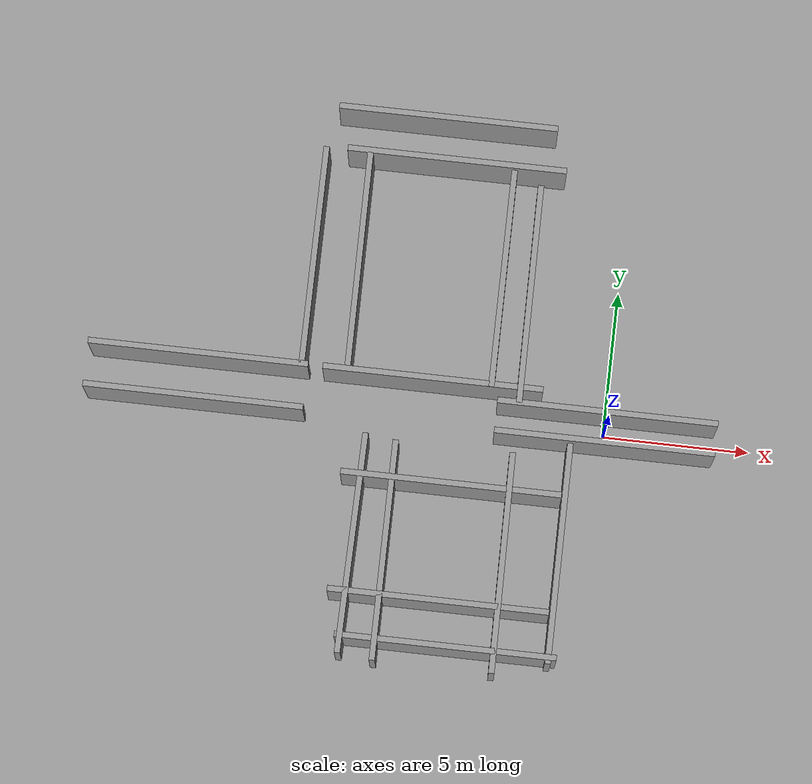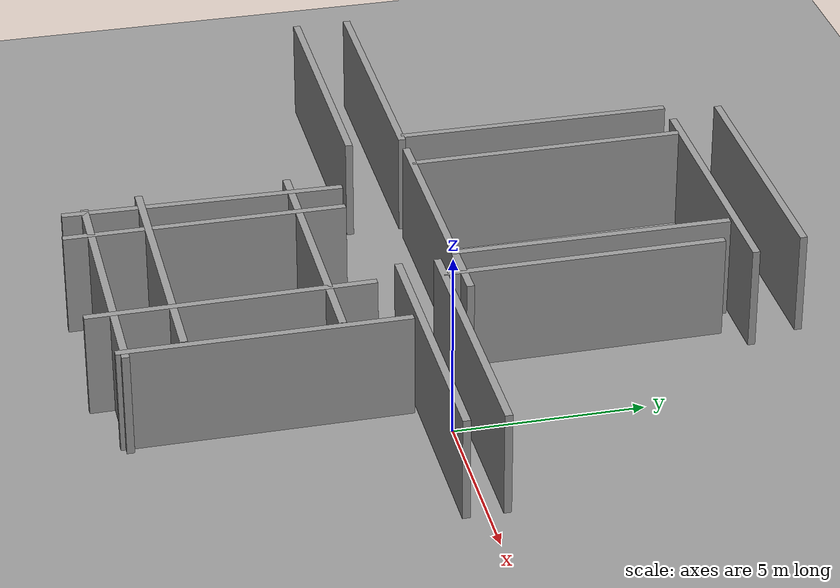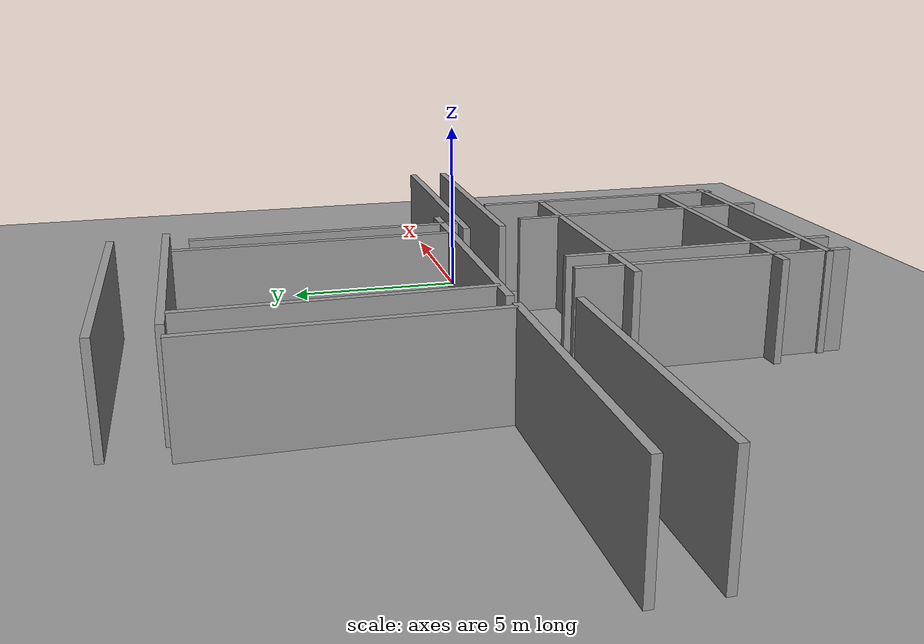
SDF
<sdf version="1.4">
 <world name="default">
  <light name="sun" type="directional">
   <pose>0 0 10 0 -0 0</pose>
   <diffuse>0.8 0.8 0.8 1</diffuse>
   <specular>0.2 0.2 0.2 1</specular>
   <attenuation>
    <range>1000</range>
    <constant>0.9</constant>
    <linear>0.01</linear>
    <quadratic>0.001</quadratic>
   </attenuation>
   <direction>0.5 0.1 -0.9</direction>
  </light>
  <scene><ambient>0.4 0.4 0.4 1</ambient><background>0.7 0.7 0.7 1</background><shadows>1</shadows></scene>
  <physics type="ode">
   <max_step_size>0.01</max_step_size>
   <real_time_factor>1</real_time_factor>
   <real_time_update_rate>100</real_time_update_rate>
   <gravity>0 0 -9.8</gravity>
  </physics>
  <model name="ground_plane_0">
   <static>1</static>
   <link name="link">
    <collision name="collision">
     <geometry><plane><normal>0 0 1</normal><size>100 100</size></plane></geometry>
     <surface><friction><ode><mu>100</mu><mu2>50</mu2></ode></friction></surface>
    </collision>
    <visual name="visual">
     <cast_shadows>0</cast_shadows>
     <geometry><plane><normal>0 0 1</normal><size>100 100</size></plane></geometry>
     <material>
      <script><uri>file://media/materials/scripts/gazebo.material</uri><name>Gazebo/Grey</name></script>
     </material>
    </visual>
    <velocity_decay><linear>0</linear><angular>0</angular></velocity_decay>
   </link>
   <pose>0.497681 0 0 0 -0 0</pose>
  </model>
  <spherical_coordinates>
   <surface_model>EARTH_WGS84</surface_model>
   <latitude_deg>0</latitude_deg>
   <longitude_deg>0</longitude_deg>
   <elevation>0</elevation>
   <heading_deg>0</heading_deg>
  </spherical_coordinates>
  <model name="grey_wall">
   <static>1</static>
   <link name="link">
    <pose>0 0 1.4 0 -0 0</pose>
    <collision name="collision"><geometry><box><size>7.5 0.2 2.8</size></box></geometry></collision>
    <visual name="visual">
     <cast_shadows>0</cast_shadows>
     <geometry><box><size>7.5 0.2 2.8</size></box></geometry>
     <material>
      <script>
       <uri>model://grey_wall/materials/scripts</uri>
       <uri>model://grey_wall/materials/textures</uri>
       <name>vrc/grey_wall</name>
      </script>
     </material>
    </visual>
    <velocity_decay><linear>0</linear><angular>0</angular></velocity_decay>
   </link>
   <pose>0 -0.546287 0 0 -0 0</pose>
  </model>
  <model name="grey_wall_0">
   <static>1</static>
   <link name="link">
    <pose>0 0 1.4 0 -0 0</pose>
    <collision name="collision"><geometry><box><size>7.5 0.2 2.8</size></box></geometry></collision>
    <visual name="visual">
     <cast_shadows>0</cast_shadows>
     <geometry><box><size>7.5 0.2 2.8</size></box></geometry>
     <material>
      <script>
       <uri>model://grey_wall/materials/scripts</uri>
       <uri>model://grey_wall/materials/textures</uri>
       <name>vrc/grey_wall</name>
      </script>
     </material>
    </visual>
    <velocity_decay><linear>0</linear><angular>0</angular></velocity_decay>
   </link>
   <pose>0 0.482263 0 0 -0 0</pose>
  </model>
  <model name="grey_wall_1">
   <static>1</static>
   <link name="link">
    <pose>0 0 1.4 0 -0 0</pose>
    <collision name="collision"><geometry><box><size>7.5 0.2 2.8</size></box></geometry></collision>
    <visual name="visual">
     <cast_shadows>0</cast_shadows>
     <geometry><box><size>7.5 0.2 2.8</size></box></geometry>
     <material>
      <script>
       <uri>model://grey_wall/materials/scripts</uri>
       <uri>model://grey_wall/materials/textures</uri>
       <name>vrc/grey_wall</name>
      </script>
     </material>
    </visual>
    <velocity_decay><linear>0</linear><angular>0</angular></velocity_decay>
   </link>
   <pose>-3.03913 4.22558 0 0 0 -1.56373</pose>
  </model>
  <model name="grey_wall_2">
   <static>1</static>
   <link name="link">
    <pose>0 0 1.4 0 -0 0</pose>
    <collision name="collision"><geometry><box><size>7.5 0.2 2.8</size></box></geometry></collision>
    <visual name="visual">
     <cast_shadows>0</cast_shadows>
     <geometry><box><size>7.5 0.2 2.8</size></box></geometry>
     <material>
      <script>
       <uri>model://grey_wall/materials/scripts</uri>
       <uri>model://grey_wall/materials/textures</uri>
       <name>vrc/grey_wall</name>
      </script>
     </material>
    </visual>
    <velocity_decay><linear>0</linear><angular>0</angular></velocity_decay>
   </link>
   <pose>-6.44743 10 0 0 -0 0</pose>
  </model>
  <model name="grey_wall_3">
   <static>1</static>
   <link name="link">
    <pose>0 0 1.4 0 -0 0</pose>
    <collision name="collision"><geometry><box><size>7.5 0.2 2.8</size></box></geometry></collision>
    <visual name="visual">
     <cast_shadows>0</cast_shadows>
     <geometry><box><size>7.5 0.2 2.8</size></box></geometry>
     <material>
      <script>
       <uri>model://grey_wall/materials/scripts</uri>
       <uri>model://grey_wall/materials/textures</uri>
       <name>vrc/grey_wall</name>
      </script>
     </material>
    </visual>
    <velocity_decay><linear>0</linear><angular>0</angular></velocity_decay>
   </link>
   <pose>-10.4729 4.77716 0 0 -0 1.57103</pose>
  </model>
  <model name="grey_wall_4">
   <static>1</static>
   <link name="link">
    <pose>0 0 1.4 0 -0 0</pose>
    <collision name="collision"><geometry><box><size>7.5 0.2 2.8</size></box></geometry></collision>
    <visual name="visual">
     <cast_shadows>0</cast_shadows>
     <geometry><box><size>7.5 0.2 2.8</size></box></geometry>
     <material>
      <script>
       <uri>model://grey_wall/materials/scripts</uri>
       <uri>model://grey_wall/materials/textures</uri>
       <name>vrc/grey_wall</name>
      </script>
     </material>
    </visual>
    <velocity_decay><linear>0</linear><angular>0</angular></velocity_decay>
   </link>
   <pose>-8.93866 4.74202 0 0 -0 1.57759</pose>
  </model>
  <model name="grey_wall_5">
   <static>1</static>
   <link name="link">
    <pose>0 0 1.4 0 -0 0</pose>
    <collision name="collision"><geometry><box><size>7.5 0.2 2.8</size></box></geometry></collision>
    <visual name="visual">
     <cast_shadows>0</cast_shadows>
     <geometry><box><size>7.5 0.2 2.8</size></box></geometry>
     <material>
      <script>
       <uri>model://grey_wall/materials/scripts</uri>
       <uri>model://grey_wall/materials/textures</uri>
       <name>vrc/grey_wall</name>
      </script>
     </material>
    </visual>
    <velocity_decay><linear>0</linear><angular>0</angular></velocity_decay>
   </link>
   <pose>-6 1 0 0 -0 0</pose>
  </model>
  <model name="grey_wall_6">
   <static>1</static>
   <link name="link">
    <pose>0 0 1.4 0 -0 0</pose>
    <collision name="collision"><geometry><box><size>7.5 0.2 2.8</size></box></geometry></collision>
    <visual name="visual">
     <cast_shadows>0</cast_shadows>
     <geometry><box><size>7.5 0.2 2.8</size></box></geometry>
     <material>
      <script>
       <uri>model://grey_wall/materials/scripts</uri>
       <uri>model://grey_wall/materials/textures</uri>
       <name>vrc/grey_wall</name>
      </script>
     </material>
    </visual>
    <velocity_decay><linear>0</linear><angular>0</angular></velocity_decay>
   </link>
   <pose>-4.01054 4.65995 0 0 -0 1.57199</pose>
  </model>
  <model name="grey_wall_7">
   <static>1</static>
   <link name="link">
    <pose>0 0 1.4 0 -0 0</pose>
    <collision name="collision"><geometry><box><size>7.5 0.2 2.8</size></box></geometry></collision>
    <visual name="visual">
     <cast_shadows>0</cast_shadows>
     <geometry><box><size>7.5 0.2 2.8</size></box></geometry>
     <material>
      <script>
       <uri>model://grey_wall/materials/scripts</uri>
       <uri>model://grey_wall/materials/textures</uri>
       <name>vrc/grey_wall</name>
      </script>
     </material>
    </visual>
    <velocity_decay><linear>0</linear><angular>0</angular></velocity_decay>
   </link>
   <pose>-6 8.57193 0 0 -0 0</pose>
  </model>
  <model name="grey_wall_8">
   <static>1</static>
   <link name="link">
    <pose>0 0 1.4 0 -0 0</pose>
    <collision name="collision"><geometry><box><size>7.5 0.2 2.8</size></box></geometry></collision>
    <visual name="visual">
     <cast_shadows>0</cast_shadows>
     <geometry><box><size>7.5 0.2 2.8</size></box></geometry>
     <material>
      <script>
       <uri>model://grey_wall/materials/scripts</uri>
       <uri>model://grey_wall/materials/textures</uri>
       <name>vrc/grey_wall</name>
      </script>
     </material>
    </visual>
    <velocity_decay><linear>0</linear><angular>0</angular></velocity_decay>
   </link>
   <pose>-14 1 0 0 -0 0</pose>
  </model>
  <model name="grey_wall_9">
   <static>1</static>
   <link name="link">
    <pose>0 0 1.4 0 -0 0</pose>
    <collision name="collision"><geometry><box><size>7.5 0.2 2.8</size></box></geometry></collision>
    <visual name="visual">
     <cast_shadows>0</cast_shadows>
     <geometry><box><size>7.5 0.2 2.8</size></box></geometry>
     <material>
      <script>
       <uri>model://grey_wall/materials/scripts</uri>
       <uri>model://grey_wall/materials/textures</uri>
       <name>vrc/grey_wall</name>
      </script>
     </material>
    </visual>
    <velocity_decay><linear>0</linear><angular>0</angular></velocity_decay>
   </link>
   <pose>-14 -0.48135 0 0 -0 0</pose>
  </model>
  <model name="grey_wall_10">
   <static>1</static>
   <link name="link">
    <pose>0 0 1.4 0 -0 0</pose>
    <collision name="collision"><geometry><box><size>7.5 0.2 2.8</size></box></geometry></collision>
    <visual name="visual">
     <cast_shadows>0</cast_shadows>
     <geometry><box><size>7.5 0.2 2.8</size></box></geometry>
     <material>
      <script>
       <uri>model://grey_wall/materials/scripts</uri>
       <uri>model://grey_wall/materials/textures</uri>
       <name>vrc/grey_wall</name>
      </script>
     </material>
    </visual>
    <velocity_decay><linear>0</linear><angular>0</angular></velocity_decay>
   </link>
   <pose>-8.11411 -4.87354 0 0 -0 1.55473</pose>
  </model>
  <model name="grey_wall_11">
   <static>1</static>
   <link name="link">
    <pose>0 0 1.4 0 -0 0</pose>
    <collision name="collision"><geometry><box><size>7.5 0.2 2.8</size></box></geometry></collision>
    <visual name="visual">
     <cast_shadows>0</cast_shadows>
     <geometry><box><size>7.5 0.2 2.8</size></box></geometry>
     <material>
      <script>
       <uri>model://grey_wall/materials/scripts</uri>
       <uri>model://grey_wall/materials/textures</uri>
       <name>vrc/grey_wall</name>
      </script>
     </material>
    </visual>
    <velocity_decay><linear>0</linear><angular>0</angular></velocity_decay>
   </link>
   <pose>-4.59282 -8 0 0 -0 0</pose>
  </model>
  <model name="grey_wall_12">
   <static>1</static>
   <link name="link">
    <pose>0 0 1.4 0 -0 0</pose>
    <collision name="collision"><geometry><box><size>7.5 0.2 2.8</size></box></geometry></collision>
    <visual name="visual">
     <cast_shadows>0</cast_shadows>
     <geometry><box><size>7.5 0.2 2.8</size></box></geometry>
     <material>
      <script>
       <uri>model://grey_wall/materials/scripts</uri>
       <uri>model://grey_wall/materials/textures</uri>
       <name>vrc/grey_wall</name>
      </script>
     </material>
    </visual>
    <velocity_decay><linear>0</linear><angular>0</angular></velocity_decay>
   </link>
   <pose>-1.13094 -4.47481 0 0 -0 1.57383</pose>
  </model>
  <model name="grey_wall_13">
   <static>1</static>
   <link name="link">
    <pose>0 0 1.4 0 -0 0</pose>
    <collision name="collision"><geometry><box><size>7.5 0.2 2.8</size></box></geometry></collision>
    <visual name="visual">
     <cast_shadows>0</cast_shadows>
     <geometry><box><size>7.5 0.2 2.8</size></box></geometry>
     <material>
      <script>
       <uri>model://grey_wall/materials/scripts</uri>
       <uri>model://grey_wall/materials/textures</uri>
       <name>vrc/grey_wall</name>
      </script>
     </material>
    </visual>
    <velocity_decay><linear>0</linear><angular>0</angular></velocity_decay>
   </link>
   <pose>-3 -5 0 0 -0 1.58213</pose>
  </model>
  <model name="grey_wall_14">
   <static>1</static>
   <link name="link">
    <pose>0 0 1.4 0 -0 0</pose>
    <collision name="collision"><geometry><box><size>7.5 0.2 2.8</size></box></geometry></collision>
    <visual name="visual">
     <cast_shadows>0</cast_shadows>
     <geometry><box><size>7.5 0.2 2.8</size></box></geometry>
     <material>
      <script>
       <uri>model://grey_wall/materials/scripts</uri>
       <uri>model://grey_wall/materials/textures</uri>
       <name>vrc/grey_wall</name>
      </script>
     </material>
    </visual>
    <velocity_decay><linear>0</linear><angular>0</angular></velocity_decay>
   </link>
   <pose>-5 -2.50698 0 0 -0 0</pose>
  </model>
  <model name="grey_wall_15">
   <static>1</static>
   <link name="link">
    <pose>0 0 1.4 0 -0 0</pose>
    <collision name="collision"><geometry><box><size>7.5 0.2 2.8</size></box></geometry></collision>
    <visual name="visual">
     <cast_shadows>0</cast_shadows>
     <geometry><box><size>7.5 0.2 2.8</size></box></geometry>
     <material>
      <script>
       <uri>model://grey_wall/materials/scripts</uri>
       <uri>model://grey_wall/materials/textures</uri>
       <name>vrc/grey_wall</name>
      </script>
     </material>
    </visual>
    <velocity_decay><linear>0</linear><angular>0</angular></velocity_decay>
   </link>
   <pose>-7 -5 0 0 -0 1.57425</pose>
  </model>
  <model name="grey_wall_16">
   <static>1</static>
   <link name="link">
    <pose>0 0 1.4 0 -0 0</pose>
    <collision name="collision"><geometry><box><size>7.5 0.2 2.8</size></box></geometry></collision>
    <visual name="visual">
     <cast_shadows>0</cast_shadows>
     <geometry><box><size>7.5 0.2 2.8</size></box></geometry>
     <material>
      <script>
       <uri>model://grey_wall/materials/scripts</uri>
       <uri>model://grey_wall/materials/textures</uri>
       <name>vrc/grey_wall</name>
      </script>
     </material>
    </visual>
    <velocity_decay><linear>0</linear><angular>0</angular></velocity_decay>
   </link>
   <pose>-5 -6.49975 0 0 -0 0</pose>
  </model>
 </world>
</sdf>
